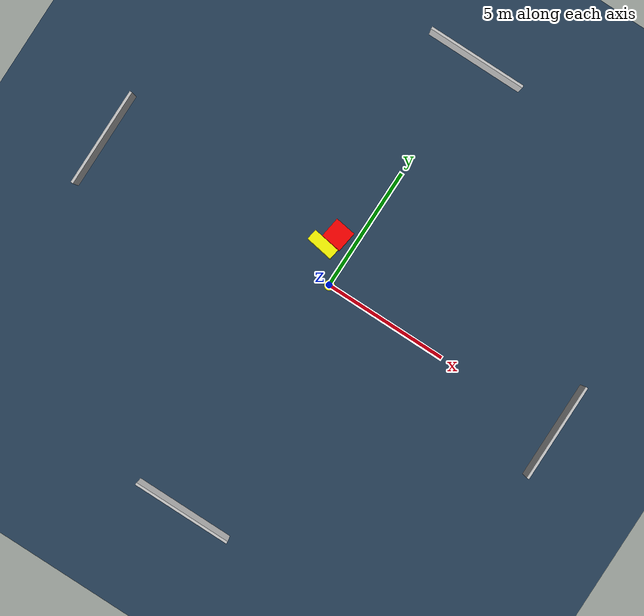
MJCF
<?xml version="1.0" ?>
<mujoco model="generated_environment">
  <option timestep="0.01" integrator="RK4" cone="elliptic"/>
  <default>
    <geom density="1"/>
  </default>
  <asset>
    <texture builtin="gradient" height="3072" name="skybox" rgb1="0.3 0.5 0.7" rgb2="0 0 0" type="skybox" width="512"/>
    <texture builtin="checker" height="300" name="groundplane" rgb1="0.2 0.3 0.4" rgb2="0.1 0.2 0.3" type="2d" width="300"/>
    <material name="groundplane" reflectance="0.2" texrepeat="5 5" texture="groundplane"/>
  </asset>
  <worldbody>
    <light dir="0 0 -1" directional="true" pos="0 0 1.5"/>
    <geom condim="3" friction="0.5 0.005 0.001" material="groundplane" name="floor" pos="0 0 0" size="0 0 0.05" type="plane"/>
    <body name="walls">
      <geom name="wall_1" condim="4" pos="-10.0 0.0 0.3" rgba="0.800000011920929 0.800000011920929 0.800000011920929 1.0" size="0.05 2.0 0.3" type="box"/>
      <geom name="wall_2" condim="4" pos="10.0 0.0 0.3" rgba="0.800000011920929 0.800000011920929 0.800000011920929 1.0" size="0.05 2.0 0.3" type="box"/>
      <geom name="wall_3" condim="4" pos="0.0 -10.0 0.3" rgba="0.800000011920929 0.800000011920929 0.800000011920929 1.0" size="2.0 0.05 0.3" type="box"/>
      <geom name="wall_4" condim="4" pos="0.0 10.0 0.3" rgba="0.800000011920929 0.800000011920929 0.800000011920929 1.0" size="2.0 0.05 0.3" type="box"/>
    </body>
    <body name="robot">
      <joint name="joint_x" type="slide" pos="0 0 0" axis="1 0 0"/>
      <joint name="joint_y" type="slide" pos="0 0 0" axis="0 1 0"/>
      <geom name="robot" type="cylinder" pos="0.0 0.0 0.2" size="0.2 0.2 0.0" mass="5.0" friction="1.0 0.005 0.0001" condim="4" rgba="1.0 1.0 0.0 1.0"/>
    </body>
    <body name="obstacle_1_movable">
      <geom name="obstacle_1_movable" condim="4" pos="-1.0196955698073877 1.1283814576621947 0.3" euler="0 0 170.7759447317938" friction="0.0 0.005 0.001" rgba="1.0 1.0 0.0 1.0" size="0.558037014686482 0.21912125811693334 0.3" type="box" mass="0.1"/>
      <joint type="free"/>
    </body>
    <body name="obstacle_2_static">
      <geom name="obstacle_2_static" condim="4" pos="-0.7395328424536992 1.7379932614763243 0.3" euler="0 0 81.55642931508312" friction="0.0 0.005 0.001" rgba="1.0 0.0 0.0 1.0" size="0.4146217264142674 0.4200916968838053 0.3" type="box"/>
    </body>
  </worldbody>
  <actuator>
    <motor name="actuator_x" joint="joint_x" gear="1" ctrlrange="-1 1"/>
    <motor name="actuator_y" joint="joint_y" gear="1" ctrlrange="-1 1"/>
  </actuator>
</mujoco>
